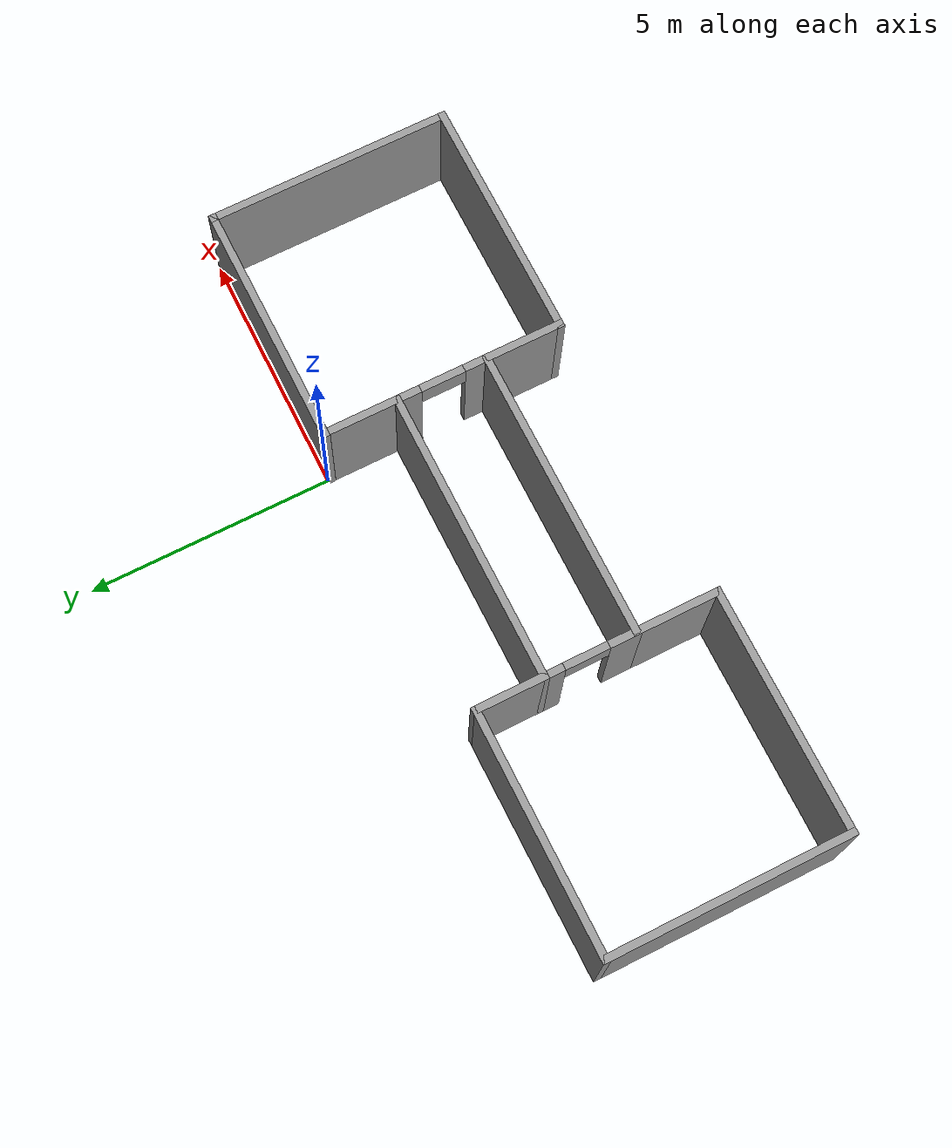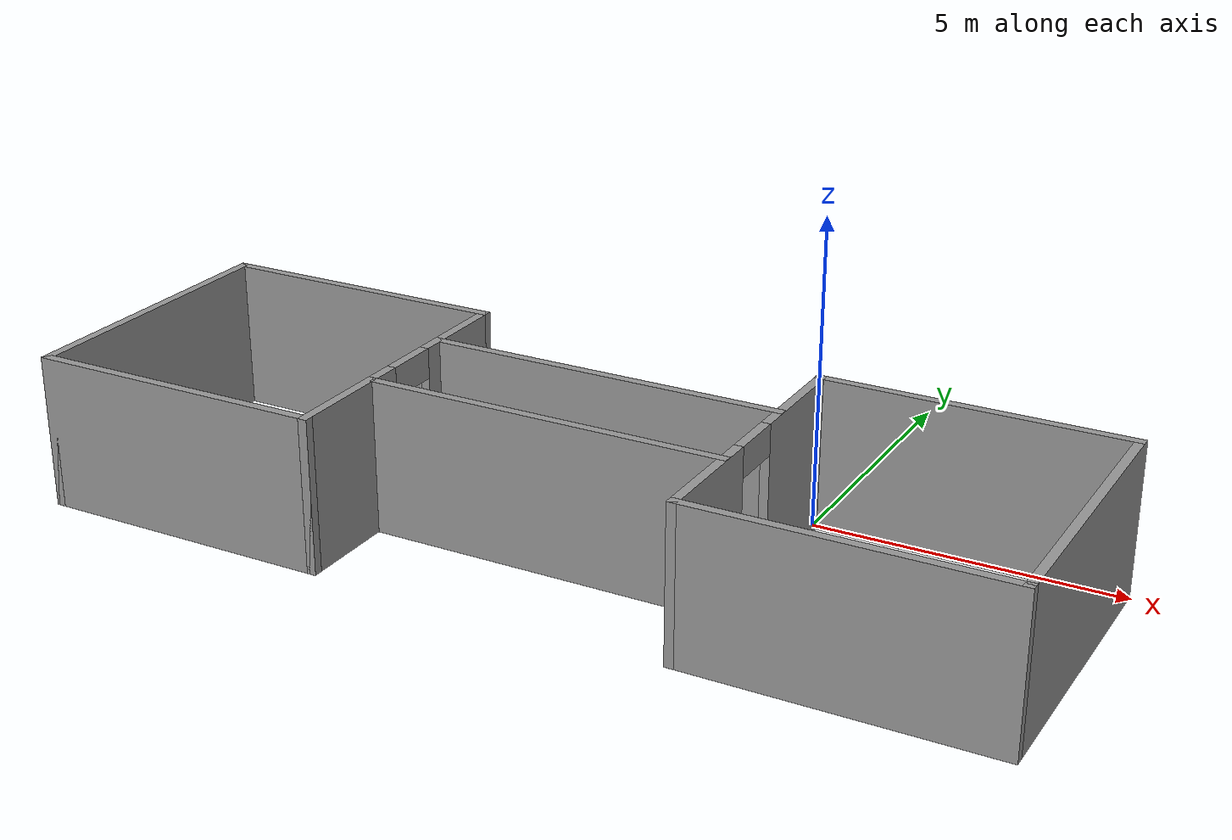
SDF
<?xml version='1.0'?>
<sdf version='1.6'>
  <model name='Untitled'>
    <pose frame=''>-2.90061 -2.54073 0 0 -0 0</pose>
    <link name='Wall_12'>
      <collision name='Wall_12_Collision'>
        <geometry>
          <box>
            <size>6 0.15 2.5</size>
          </box>
        </geometry>
        <pose frame=''>0 0 1.25 0 -0 0</pose>
      </collision>
      <visual name='Wall_12_Visual'>
        <pose frame=''>0 0 1.25 0 -0 0</pose>
        <geometry>
          <box>
            <size>6 0.15 2.5</size>
          </box>
        </geometry>
        <material>
          <script>
            <uri>file://media/materials/scripts/gazebo.material</uri>
            <name>Gazebo/Grey</name>
          </script>
          <ambient>1 1 1 1</ambient>
        </material>
        <meta>
          <layer>0</layer>
        </meta>
      </visual>
      <pose frame=''>-0.006618 1.00934 0 0 -0 3.14159</pose>
    </link>
    <link name='Wall_13'>
      <pose frame=''>-2.93162 0.084341 0 0 0 -1.5708</pose>
      <visual name='Wall_13_Visual_0'>
        <pose frame=''>-0.765115 0 1.25 0 -0 0</pose>
        <geometry>
          <box>
            <size>0.46977 0.15 2.5</size>
          </box>
        </geometry>
        <material>
          <script>
            <uri>file://media/materials/scripts/gazebo.material</uri>
            <name>Gazebo/Grey</name>
          </script>
          <ambient>1 1 1 1</ambient>
        </material>
        <meta>
          <layer>0</layer>
        </meta>
      </visual>
      <collision name='Wall_13_Collision_0'>
        <geometry>
          <box>
            <size>0.46977 0.15 2.5</size>
          </box>
        </geometry>
        <pose frame=''>-0.765115 0 1.25 0 -0 0</pose>
      </collision>
      <visual name='Wall_13_Visual_1'>
        <pose frame=''>0.684885 0 1.25 0 -0 0</pose>
        <geometry>
          <box>
            <size>0.63023 0.15 2.5</size>
          </box>
        </geometry>
        <material>
          <script>
            <uri>file://media/materials/scripts/gazebo.material</uri>
            <name>Gazebo/Grey</name>
          </script>
          <ambient>1 1 1 1</ambient>
        </material>
        <meta>
          <layer>0</layer>
        </meta>
      </visual>
      <collision name='Wall_13_Collision_1'>
        <geometry>
          <box>
            <size>0.63023 0.15 2.5</size>
          </box>
        </geometry>
        <pose frame=''>0.684885 0 1.25 0 -0 0</pose>
      </collision>
      <visual name='Wall_13_Visual_2'>
        <pose frame=''>-0.08023 0 2.25 0 -0 0</pose>
        <geometry>
          <box>
            <size>0.9 0.15 0.5</size>
          </box>
        </geometry>
        <material>
          <script>
            <uri>file://media/materials/scripts/gazebo.material</uri>
            <name>Gazebo/Grey</name>
          </script>
          <ambient>1 1 1 1</ambient>
        </material>
        <meta>
          <layer>0</layer>
        </meta>
      </visual>
      <collision name='Wall_13_Collision_2'>
        <geometry>
          <box>
            <size>0.9 0.15 0.5</size>
          </box>
        </geometry>
        <pose frame=''>-0.08023 0 2.25 0 -0 0</pose>
      </collision>
    </link>
    <link name='Wall_14'>
      <collision name='Wall_14_Collision'>
        <geometry>
          <box>
            <size>6 0.15 2.5</size>
          </box>
        </geometry>
        <pose frame=''>0 0 1.25 0 -0 0</pose>
      </collision>
      <visual name='Wall_14_Visual'>
        <pose frame=''>0 0 1.25 0 -0 0</pose>
        <geometry>
          <box>
            <size>6 0.15 2.5</size>
          </box>
        </geometry>
        <material>
          <script>
            <uri>file://media/materials/scripts/gazebo.material</uri>
            <name>Gazebo/Grey</name>
          </script>
          <ambient>1 1 1 1</ambient>
        </material>
        <meta>
          <layer>0</layer>
        </meta>
      </visual>
      <pose frame=''>-0.006618 -0.840659 0 0 -0 0</pose>
    </link>
    <link name='Wall_16'>
      <collision name='Wall_16_Collision'>
        <geometry>
          <box>
            <size>1.5 0.15 2.5</size>
          </box>
        </geometry>
        <pose frame=''>0 0 1.25 0 -0 0</pose>
      </collision>
      <visual name='Wall_16_Visual'>
        <pose frame=''>0 0 1.25 0 -0 0</pose>
        <geometry>
          <box>
            <size>1.5 0.15 2.5</size>
          </box>
        </geometry>
        <material>
          <script>
            <uri>file://media/materials/scripts/gazebo.material</uri>
            <name>Gazebo/Grey</name>
          </script>
          <ambient>1 1 1 1</ambient>
        </material>
        <meta>
          <layer>0</layer>
        </meta>
      </visual>
      <pose frame=''>-2.93162 1.68434 0 0 -0 1.5708</pose>
    </link>
    <link name='Wall_17'>
      <collision name='Wall_17_Collision'>
        <geometry>
          <box>
            <size>5 0.15 2.5</size>
          </box>
        </geometry>
        <pose frame=''>0 0 1.25 0 -0 0</pose>
      </collision>
      <visual name='Wall_17_Visual'>
        <pose frame=''>0 0 1.25 0 -0 0</pose>
        <geometry>
          <box>
            <size>5 0.15 2.5</size>
          </box>
        </geometry>
        <material>
          <script>
            <uri>file://media/materials/scripts/gazebo.material</uri>
            <name>Gazebo/Grey</name>
          </script>
          <ambient>1 1 1 1</ambient>
        </material>
        <meta>
          <layer>0</layer>
        </meta>
      </visual>
      <pose frame=''>-5.35662 2.35934 0 0 -0 3.14159</pose>
    </link>
    <link name='Wall_19'>
      <collision name='Wall_19_Collision'>
        <geometry>
          <box>
            <size>5 0.15 2.5</size>
          </box>
        </geometry>
        <pose frame=''>0 0 1.25 0 -0 0</pose>
      </collision>
      <visual name='Wall_19_Visual'>
        <pose frame=''>0 0 1.25 0 -0 0</pose>
        <geometry>
          <box>
            <size>5 0.15 2.5</size>
          </box>
        </geometry>
        <material>
          <script>
            <uri>file://media/materials/scripts/gazebo.material</uri>
            <name>Gazebo/Grey</name>
          </script>
          <ambient>1 1 1 1</ambient>
        </material>
        <meta>
          <layer>0</layer>
        </meta>
      </visual>
      <pose frame=''>-7.78162 -0.065659 0 0 0 -1.5708</pose>
    </link>
    <link name='Wall_20'>
      <collision name='Wall_20_Collision'>
        <geometry>
          <box>
            <size>5 0.15 2.5</size>
          </box>
        </geometry>
        <pose frame=''>0 0 1.25 0 -0 0</pose>
      </collision>
      <visual name='Wall_20_Visual'>
        <pose frame=''>0 0 1.25 0 -0 0</pose>
        <geometry>
          <box>
            <size>5 0.15 2.5</size>
          </box>
        </geometry>
        <material>
          <script>
            <uri>file://media/materials/scripts/gazebo.material</uri>
            <name>Gazebo/Grey</name>
          </script>
          <ambient>1 1 1 1</ambient>
        </material>
        <meta>
          <layer>0</layer>
        </meta>
      </visual>
      <pose frame=''>-5.35662 -2.49066 0 0 -0 0</pose>
    </link>
    <link name='Wall_23'>
      <collision name='Wall_23_Collision'>
        <geometry>
          <box>
            <size>1.8 0.15 2.5</size>
          </box>
        </geometry>
        <pose frame=''>0 0 1.25 0 -0 0</pose>
      </collision>
      <visual name='Wall_23_Visual'>
        <pose frame=''>0 0 1.25 0 -0 0</pose>
        <geometry>
          <box>
            <size>1.8 0.15 2.5</size>
          </box>
        </geometry>
        <material>
          <script>
            <uri>file://media/materials/scripts/gazebo.material</uri>
            <name>Gazebo/Grey</name>
          </script>
          <ambient>1 1 1 1</ambient>
        </material>
        <meta>
          <layer>0</layer>
        </meta>
      </visual>
      <pose frame=''>-2.93162 -1.66566 0 0 0 -1.5708</pose>
    </link>
    <link name='Wall_3'>
      <collision name='Wall_3_Collision'>
        <geometry>
          <box>
            <size>5.01002 0.15 2.5</size>
          </box>
        </geometry>
        <pose frame=''>0 0 1.25 0 -0 0</pose>
      </collision>
      <visual name='Wall_3_Visual'>
        <pose frame=''>0 0 1.25 0 -0 0</pose>
        <geometry>
          <box>
            <size>5.01002 0.15 2.5</size>
          </box>
        </geometry>
        <material>
          <script>
            <uri>file://media/materials/scripts/gazebo.material</uri>
            <name>Gazebo/Grey</name>
          </script>
          <ambient>1 1 1 1</ambient>
        </material>
        <meta>
          <layer>0</layer>
        </meta>
      </visual>
      <pose frame=''>5.35161 2.49066 0 0 -0 0</pose>
    </link>
    <link name='Wall_6'>
      <collision name='Wall_6_Collision'>
        <geometry>
          <box>
            <size>5 0.15 2.5</size>
          </box>
        </geometry>
        <pose frame=''>0 0 1.25 0 -0 0</pose>
      </collision>
      <visual name='Wall_6_Visual'>
        <pose frame=''>0 0 1.25 0 -0 0</pose>
        <geometry>
          <box>
            <size>5 0.15 2.5</size>
          </box>
        </geometry>
        <material>
          <script>
            <uri>file://media/materials/scripts/gazebo.material</uri>
            <name>Gazebo/Grey</name>
          </script>
          <ambient>1 1 1 1</ambient>
        </material>
        <meta>
          <layer>0</layer>
        </meta>
      </visual>
      <pose frame=''>7.78162 0.065659 0 0 0 -1.5708</pose>
    </link>
    <link name='Wall_7'>
      <collision name='Wall_7_Collision'>
        <geometry>
          <box>
            <size>5 0.15 2.5</size>
          </box>
        </geometry>
        <pose frame=''>0 0 1.25 0 -0 0</pose>
      </collision>
      <visual name='Wall_7_Visual'>
        <pose frame=''>0 0 1.25 0 -0 0</pose>
        <geometry>
          <box>
            <size>5 0.15 2.5</size>
          </box>
        </geometry>
        <material>
          <script>
            <uri>file://media/materials/scripts/gazebo.material</uri>
            <name>Gazebo/Grey</name>
          </script>
          <ambient>1 1 1 1</ambient>
        </material>
        <meta>
          <layer>0</layer>
        </meta>
      </visual>
      <pose frame=''>5.35662 -2.35934 0 0 -0 3.14159</pose>
    </link>
    <link name='Wall_8'>
      <pose frame=''>2.93162 0.065659 0 0 -0 1.5708</pose>
      <visual name='Wall_8_Visual_0'>
        <pose frame=''>-1.46577 0 1.25 0 -0 0</pose>
        <geometry>
          <box>
            <size>2.06846 0.15 2.5</size>
          </box>
        </geometry>
        <material>
          <script>
            <uri>file://media/materials/scripts/gazebo.material</uri>
            <name>Gazebo/Grey</name>
          </script>
          <ambient>1 1 1 1</ambient>
        </material>
        <meta>
          <layer>0</layer>
        </meta>
      </visual>
      <collision name='Wall_8_Collision_0'>
        <geometry>
          <box>
            <size>2.06846 0.15 2.5</size>
          </box>
        </geometry>
        <pose frame=''>-1.46577 0 1.25 0 -0 0</pose>
      </collision>
      <visual name='Wall_8_Visual_1'>
        <pose frame=''>1.48423 0 1.25 0 -0 0</pose>
        <geometry>
          <box>
            <size>2.03154 0.15 2.5</size>
          </box>
        </geometry>
        <material>
          <script>
            <uri>file://media/materials/scripts/gazebo.material</uri>
            <name>Gazebo/Grey</name>
          </script>
          <ambient>1 1 1 1</ambient>
        </material>
        <meta>
          <layer>0</layer>
        </meta>
      </visual>
      <collision name='Wall_8_Collision_1'>
        <geometry>
          <box>
            <size>2.03154 0.15 2.5</size>
          </box>
        </geometry>
        <pose frame=''>1.48423 0 1.25 0 -0 0</pose>
      </collision>
      <visual name='Wall_8_Visual_2'>
        <pose frame=''>0.018458 0 2.25 0 -0 0</pose>
        <geometry>
          <box>
            <size>0.9 0.15 0.5</size>
          </box>
        </geometry>
        <material>
          <script>
            <uri>file://media/materials/scripts/gazebo.material</uri>
            <name>Gazebo/Grey</name>
          </script>
          <ambient>1 1 1 1</ambient>
        </material>
        <meta>
          <layer>0</layer>
        </meta>
      </visual>
      <collision name='Wall_8_Collision_2'>
        <geometry>
          <box>
            <size>0.9 0.15 0.5</size>
          </box>
        </geometry>
        <pose frame=''>0.018458 0 2.25 0 -0 0</pose>
      </collision>
    </link>
    <static>1</static>
  </model>
</sdf>
